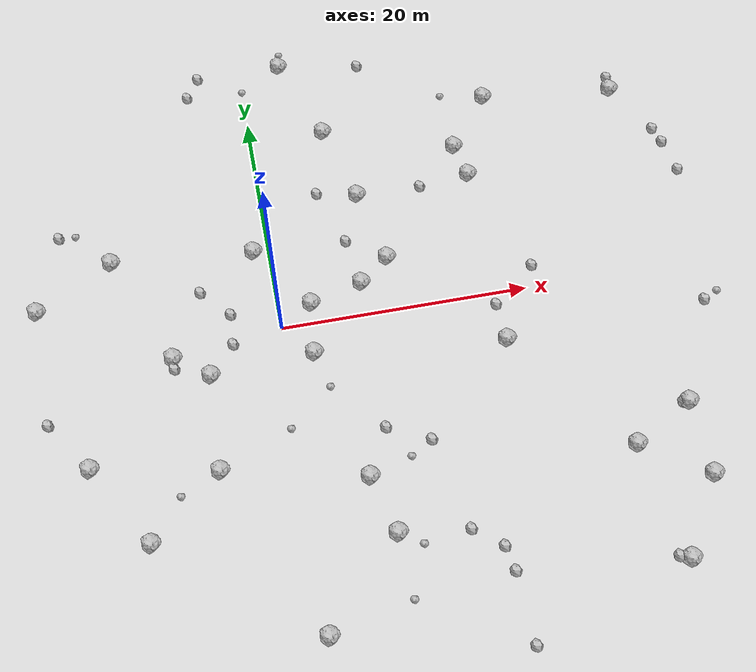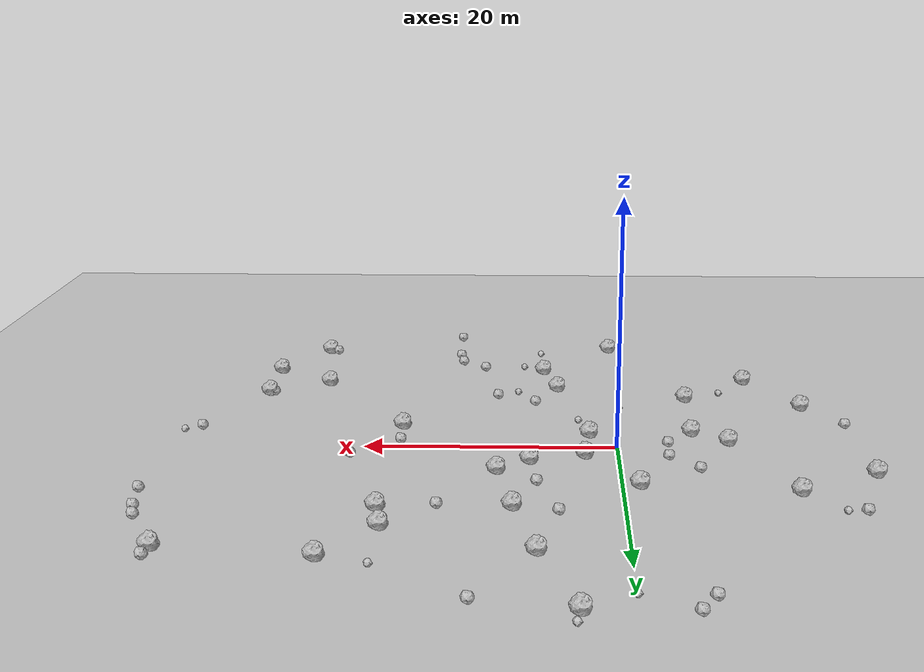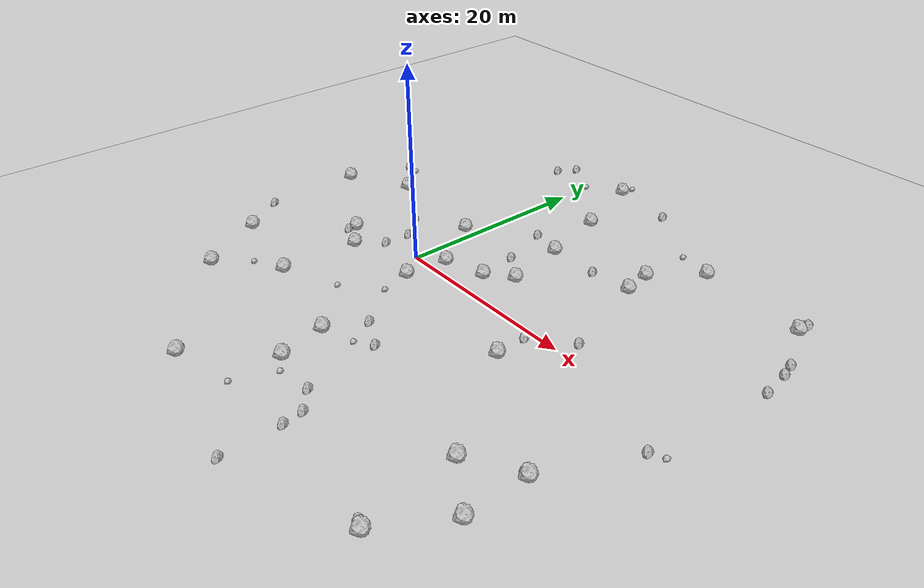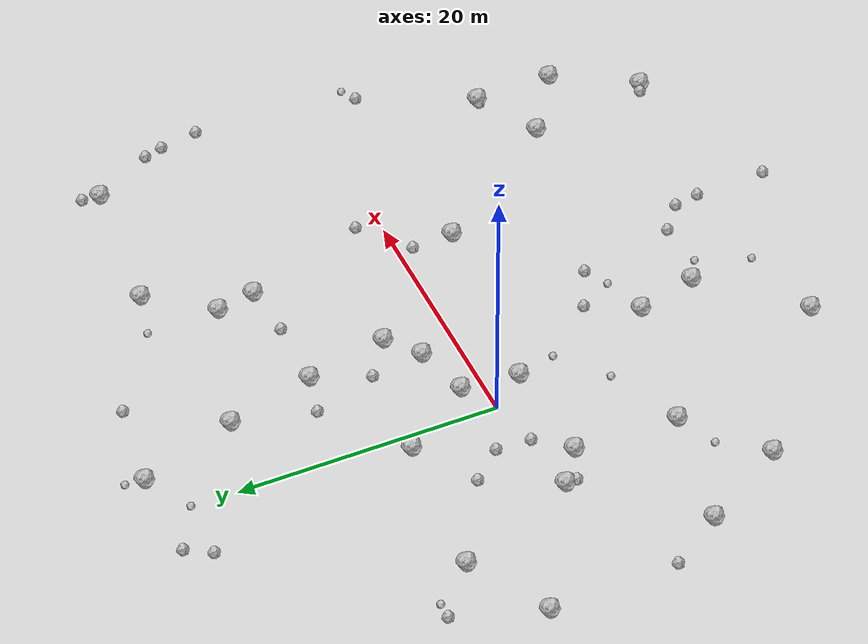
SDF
<sdf version="1.6">
 <world name="default">
  <include><uri>model://custom_ground</uri></include>
  <include><uri>model://sun</uri></include>
  <model name="rock1_0_0">
   <include><uri>model://rock1</uri><pose>-19.085532682817163 4.844828961862753 0.5 0 0 0</pose></include>
  </model>
  <model name="rock1_0_1">
   <include><uri>model://rock1</uri><pose>29.98500551781283 -12.101282707897678 0.5 0 0 0</pose></include>
  </model>
  <model name="rock1_0_2">
   <include><uri>model://rock1</uri><pose>17.400237714811034 -4.299624235020879 0.5 0 0 0</pose></include>
  </model>
  <model name="rock1_0_3">
   <include><uri>model://rock1</uri><pose>5.886543642120799 -18.297176721765567 0.5 0 0 0</pose></include>
  </model>
  <model name="rock1_0_4">
   <include><uri>model://rock1</uri><pose>-6.349609781417092 -11.137534719862693 0.5 0 0 0</pose></include>
  </model>
  <model name="rock1_0_5">
   <include><uri>model://rock1</uri><pose>-8.813243428215472 -1.1824219057226628 0.5 0 0 0</pose></include>
  </model>
  <model name="rock1_0_6">
   <include><uri>model://rock1</uri><pose>-12.06450352750023 -15.839941510622847 0.5 0 0 0</pose></include>
  </model>
  <model name="rock1_0_7">
   <include><uri>model://rock1</uri><pose>-16.008438096959043 -9.253805651468298 0.5 0 0 0</pose></include>
  </model>
  <model name="rock1_0_8">
   <include><uri>model://rock1</uri><pose>-0.34469749310616393 -24.86324592676843 0.5 0 0 0</pose></include>
  </model>
  <model name="rock1_0_9">
   <include><uri>model://rock1</uri><pose>17.694299531993124 11.473987658099546 0.5 0 0 0</pose></include>
  </model>
  <model name="rock1_0_10">
   <include><uri>model://rock1</uri><pose>-1.2506725966672008 7.256386599827529 0.5 0 0 0</pose></include>
  </model>
  <model name="rock1_0_11">
   <include><uri>model://rock1</uri><pose>2.1883949033071026 -2.6988669014512006 0.5 0 0 0</pose></include>
  </model>
  <model name="rock1_0_12">
   <include><uri>model://rock1</uri><pose>8.080335126814639 11.137513000913806 0.5 0 0 0</pose></include>
  </model>
  <model name="rock1_0_13">
   <include><uri>model://rock1</uri><pose>20.720733005901188 19.108411789299524 0.5 0 0 0</pose></include>
  </model>
  <model name="rock1_0_14">
   <include><uri>model://rock1</uri><pose>-12.834664451413333 8.289941198156548 0.5 0 0 0</pose></include>
  </model>
  <model name="rock1_0_15">
   <include><uri>model://rock1</uri><pose>30.10531323115643 -18.128156663228687 0.5 0 0 0</pose></include>
  </model>
  <model name="rock1_0_16">
   <include><uri>model://rock1</uri><pose>4.663513143033747 -13.620383489596172 0.5 0 0 0</pose></include>
  </model>
  <model name="rock1_0_17">
   <include><uri>model://rock1</uri><pose>9.418962616035333 4.764191750243867 0.5 0 0 0</pose></include>
  </model>
  <model name="rock1_0_18">
   <include><uri>model://rock1</uri><pose>25.102173112449357 -14.768267026885615 0.5 0 0 0</pose></include>
  </model>
  <model name="rock1_0_19">
   <include><uri>model://rock1</uri><pose>2.6500115843774275 1.6815815044789382 0.5 0 0 0</pose></include>
  </model>
  <model name="rock1_0_20">
   <include><uri>model://rock1</uri><pose>26.524206028407455 -24.093484161937425 0.5 0 0 0</pose></include>
  </model>
  <model name="rock1_0_21">
   <include><uri>model://rock1</uri><pose>31.83714578414336 17.899989783821347 0.5 0 0 0</pose></include>
  </model>
  <model name="rock1_0_22">
   <include><uri>model://rock1</uri><pose>6.938741259187083 2.818088958183914 0.5 0 0 0</pose></include>
  </model>
  <model name="rock1_0_23">
   <include><uri>model://rock1</uri><pose>6.29848676640394 17.98183875179179 0.5 0 0 0</pose></include>
  </model>
  <model name="rock1_0_24">
   <include><uri>model://rock1</uri><pose>-6.062630458745339 -3.179231971579501 0.5 0 0 0</pose></include>
  </model>
  <model name="rock1_0_25">
   <include><uri>model://rock1</uri><pose>17.124643260281267 14.470400945605235 0.5 0 0 0</pose></include>
  </model>
  <model name="rock1_0_26">
   <include><uri>model://rock1</uri><pose>3.5988067701978004 25.63204860622968 0.5 0 0 0</pose></include>
  </model>
  <model name="rock2_0_0">
   <include><uri>model://rock2</uri><pose>10.425797415857765 24.54030737550829 0.3 0 0 0</pose></include>
  </model>
  <model name="rock2_0_1">
   <include><uri>model://rock2</uri><pose>13.689815238955156 -22.66165771253462 0.3 0 0 0</pose></include>
  </model>
  <model name="rock2_0_2">
   <include><uri>model://rock2</uri><pose>-8.840655458681228 -2.086580652214554 0.3 0 0 0</pose></include>
  </model>
  <model name="rock2_0_3">
   <include><uri>model://rock2</uri><pose>20.878439031592116 1.9123820933202182 0.3 0 0 0</pose></include>
  </model>
  <model name="rock2_0_4">
   <include><uri>model://rock2</uri><pose>9.785143276138776 -11.53765441874421 0.3 0 0 0</pose></include>
  </model>
  <model name="rock2_0_5">
   <include><uri>model://rock2</uri><pose>13.417658999806577 11.059748091644252 0.3 0 0 0</pose></include>
  </model>
  <model name="rock2_0_6">
   <include><uri>model://rock2</uri><pose>6.53406195701384 -9.920764801748472 0.3 0 0 0</pose></include>
  </model>
  <model name="rock2_0_7">
   <include><uri>model://rock2</uri><pose>29.52341181026842 -12.064221403106707 0.3 0 0 0</pose></include>
  </model>
  <model name="rock2_0_8">
   <include><uri>model://rock2</uri><pose>35.31666570166165 8.75737771489056 0.3 0 0 0</pose></include>
  </model>
  <model name="rock2_0_9">
   <include><uri>model://rock2</uri><pose>13.343039467748326 -20.70750167572931 0.3 0 0 0</pose></include>
  </model>
  <model name="rock2_0_10">
   <include><uri>model://rock2</uri><pose>-4.027916984620363 -0.7790468654345091 0.3 0 0 0</pose></include>
  </model>
  <model name="rock2_0_11">
   <include><uri>model://rock2</uri><pose>-16.88570997991632 11.47321856727718 0.3 0 0 0</pose></include>
  </model>
  <model name="rock2_0_12">
   <include><uri>model://rock2</uri><pose>34.80227687845229 11.747342755579766 0.3 0 0 0</pose></include>
  </model>
  <model name="rock2_0_13">
   <include><uri>model://rock2</uri><pose>-6.042213911946387 4.288184926825245 0.3 0 0 0</pose></include>
  </model>
  <model name="rock2_0_14">
   <include><uri>model://rock2</uri><pose>-18.899861356150932 -5.084036853005074 0.3 0 0 0</pose></include>
  </model>
  <model name="rock2_0_15">
   <include><uri>model://rock2</uri><pose>-3.8831414355045837 1.8847237491624327 0.3 0 0 0</pose></include>
  </model>
  <model name="rock2_0_16">
   <include><uri>model://rock2</uri><pose>33.806101325014126 -3.7189685395357905 0.3 0 0 0</pose></include>
  </model>
  <model name="rock2_0_17">
   <include><uri>model://rock2</uri><pose>-4.803256792833032 23.780418331259433 0.3 0 0 0</pose></include>
  </model>
  <model name="rock2_0_18">
   <include><uri>model://rock2</uri><pose>6.335768560671195 6.9113425470365755 0.3 0 0 0</pose></include>
  </model>
  <model name="rock2_0_19">
   <include><uri>model://rock2</uri><pose>-3.663334774794013 25.660381146595782 0.3 0 0 0</pose></include>
  </model>
  <model name="rock2_0_20">
   <include><uri>model://rock2</uri><pose>17.220282366689624 -1.086153360826426 0.3 0 0 0</pose></include>
  </model>
  <model name="rock2_0_21">
   <include><uri>model://rock2</uri><pose>13.868542396656714 -28.192494148604283 0.3 0 0 0</pose></include>
  </model>
  <model name="rock2_0_22">
   <include><uri>model://rock2</uri><pose>34.363256959340625 13.22122780964117 0.3 0 0 0</pose></include>
  </model>
  <model name="rock2_0_23">
   <include><uri>model://rock2</uri><pose>25.699797038591008 -23.770724075628383 0.3 0 0 0</pose></include>
  </model>
  <model name="rock2_0_24">
   <include><uri>model://rock2</uri><pose>31.924088132675024 19.246238401600266 0.3 0 0 0</pose></include>
  </model>
  <model name="rock2_0_25">
   <include><uri>model://rock2</uri><pose>11.210349813217974 -18.99083656144633 0.3 0 0 0</pose></include>
  </model>
  <model name="rock2_0_26">
   <include><uri>model://rock2</uri><pose>4.733577912333004 11.90981731324986 0.3 0 0 0</pose></include>
  </model>
  <model name="rock3_0_0">
   <include><uri>model://rock3</uri><pose>-9.547968328306611 -12.622755368906319 0.2 0 0 0</pose></include>
  </model>
  <model name="rock3_0_1">
   <include><uri>model://rock3</uri><pose>6.048656113246896 -23.394599676399878 0.2 0 0 0</pose></include>
  </model>
  <model name="rock3_0_2">
   <include><uri>model://rock3</uri><pose>2.917415542008623 -5.796076192776344 0.2 0 0 0</pose></include>
  </model>
  <model name="rock3_0_3">
   <include><uri>model://rock3</uri><pose>8.01135006914462 -12.602043537637101 0.2 0 0 0</pose></include>
  </model>
  <model name="rock3_0_4">
   <include><uri>model://rock3</uri><pose>17.04416489903715 19.940531706277994 0.2 0 0 0</pose></include>
  </model>
  <model name="rock3_0_5">
   <include><uri>model://rock3</uri><pose>-0.6138999198952249 -8.73614217235162 0.2 0 0 0</pose></include>
  </model>
  <model name="rock3_0_6">
   <include><uri>model://rock3</uri><pose>0.0001702681094855052 23.524612288121027 0.2 0 0 0</pose></include>
  </model>
  <model name="rock3_0_7">
   <include><uri>model://rock3</uri><pose>7.572617381272039 -19.464995594557536 0.2 0 0 0</pose></include>
  </model>
  <model name="rock3_0_8">
   <include><uri>model://rock3</uri><pose>3.779082922405241 26.98421225993772 0.2 0 0 0</pose></include>
  </model>
  <model name="rock3_0_9">
   <include><uri>model://rock3</uri><pose>-15.54144089975058 11.387261891631923 0.2 0 0 0</pose></include>
  </model>
  <model name="rock3_0_10">
   <include><uri>model://rock3</uri><pose>35.0580561844538 -3.1303487477655665 0.2 0 0 0</pose></include>
  </model>
 </world>
</sdf>
